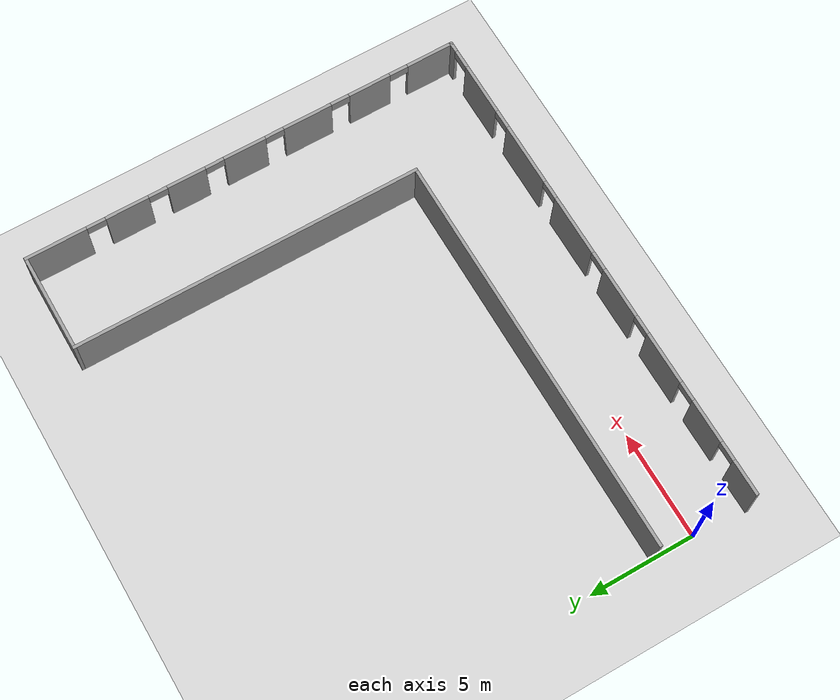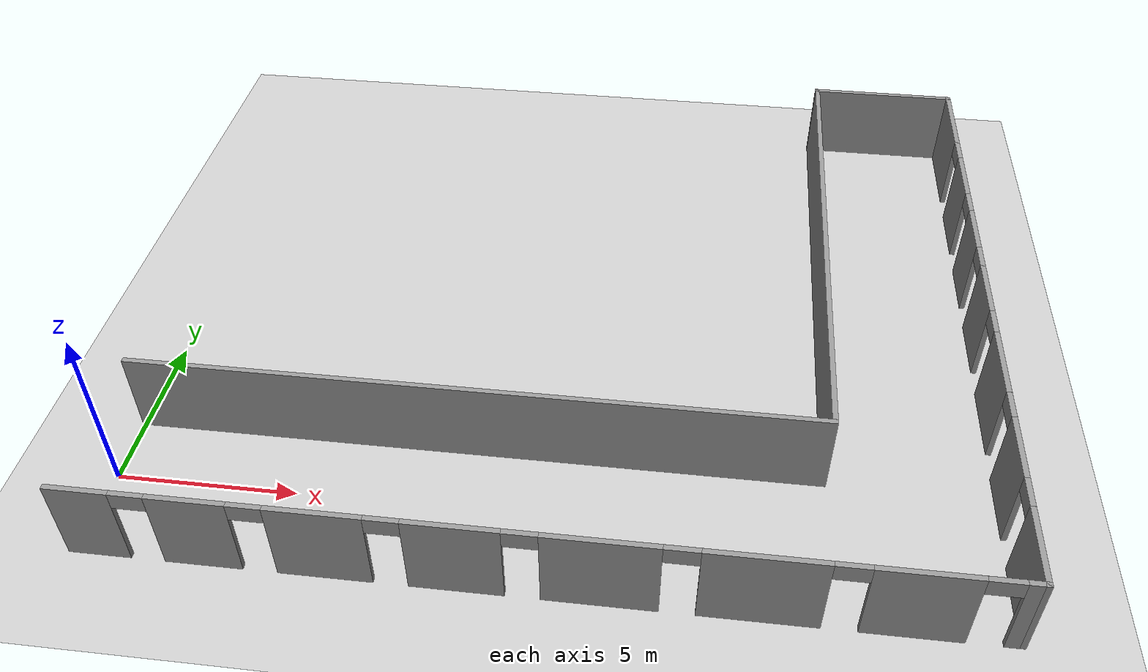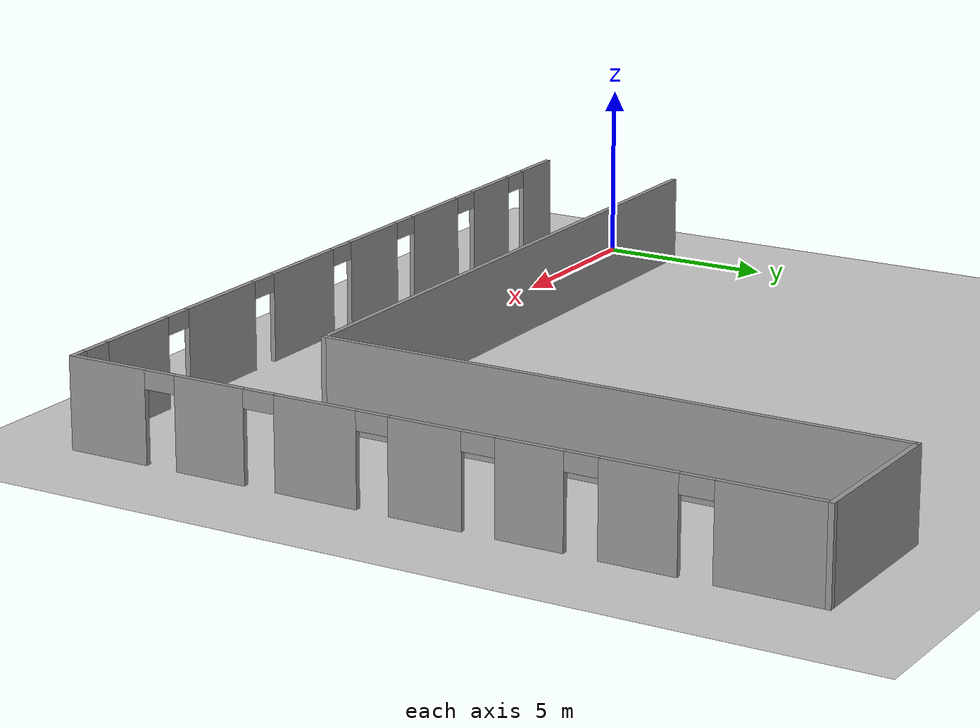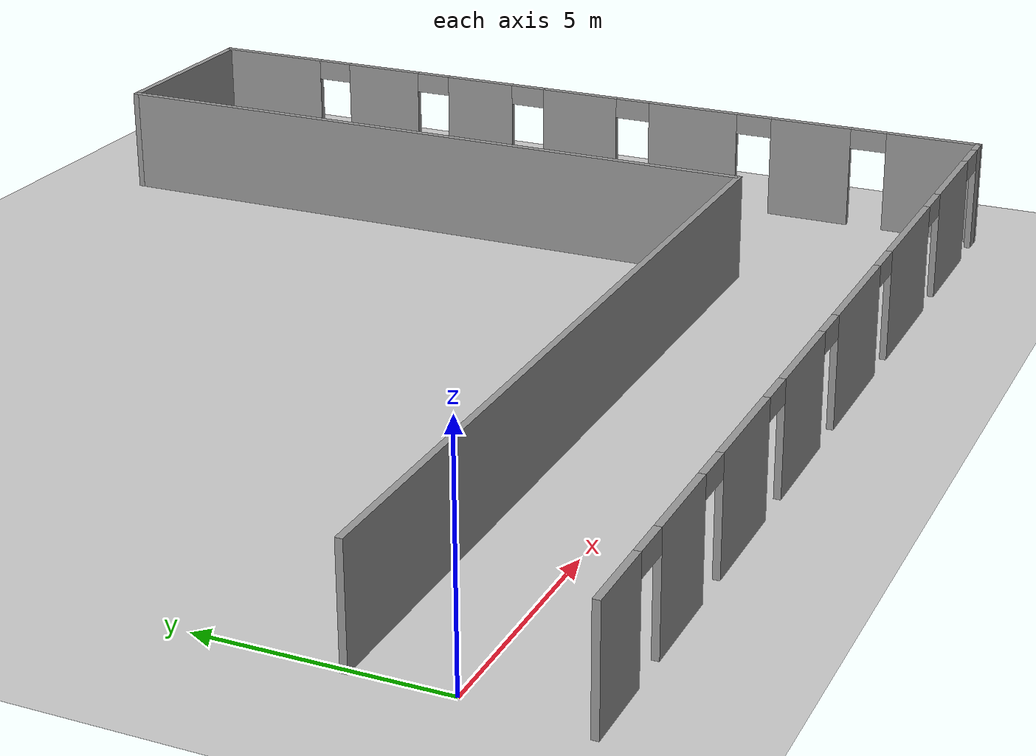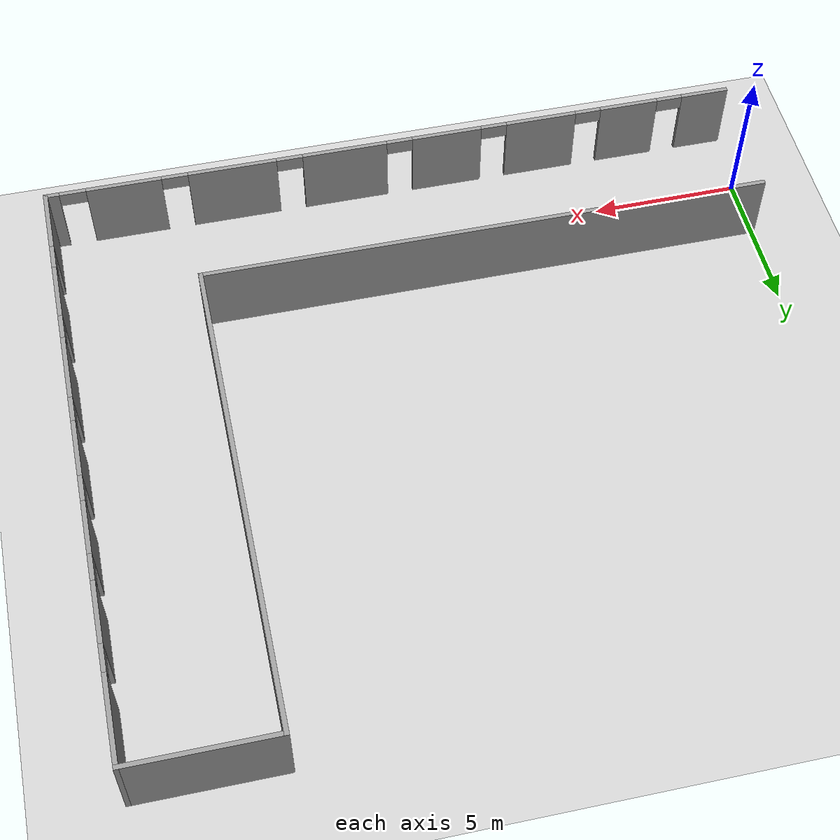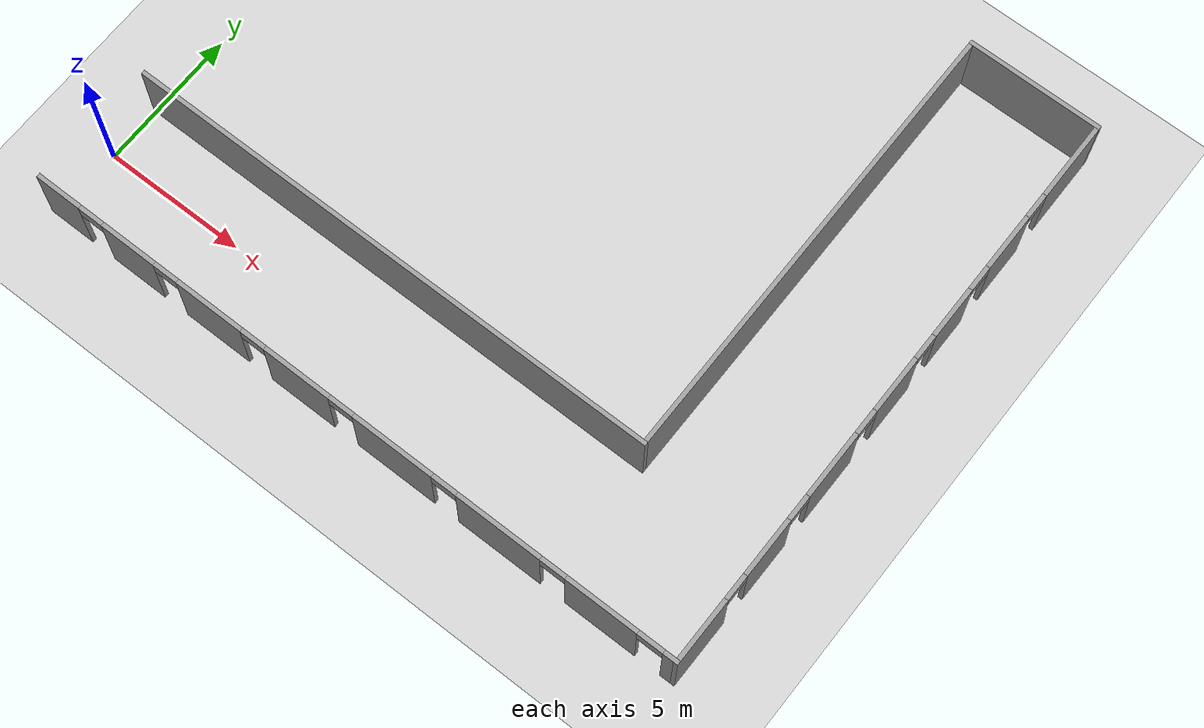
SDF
<sdf version="1.7">
 <world name="default">
  <light name="sun" type="directional">
   <pose>0 0 10 0 -0 0</pose>
   <diffuse>0.8 0.8 0.8 1</diffuse>
   <specular>0.2 0.2 0.2 1</specular>
   <attenuation>
    <range>1000</range>
    <constant>0.9</constant>
    <linear>0.01</linear>
    <quadratic>0.001</quadratic>
   </attenuation>
   <direction>-0.5 0.1 -0.9</direction>
   <spot><inner_angle>0</inner_angle><outer_angle>0</outer_angle><falloff>0</falloff></spot>
  </light>
  <model name="ground_plane">
   <static>1</static>
   <link name="link">
    <collision name="collision">
     <geometry><plane><normal>0 0 1</normal><size>100 100</size></plane></geometry>
     <surface><friction><ode><mu>100</mu><mu2>50</mu2></ode></friction></surface>
    </collision>
    <visual name="visual">
     <cast_shadows>0</cast_shadows>
     <geometry><plane><normal>0 0 1</normal><size>100 100</size></plane></geometry>
     <material>
      <script><uri>file://media/materials/scripts/gazebo.material</uri><name>Gazebo/Grey</name></script>
     </material>
    </visual>
   </link>
  </model>
  <gravity>0 0 -9.8</gravity>
  <magnetic_field>6e-06 2.3e-05 -4.2e-05</magnetic_field>
  <atmosphere type="adiabatic"/>
  <physics type="ode">
   <max_step_size>0.001</max_step_size>
   <real_time_factor>1</real_time_factor>
   <real_time_update_rate>1000</real_time_update_rate>
  </physics>
  <scene><ambient>0.4 0.4 0.4 1</ambient><background>0.7 0.7 0.7 1</background><shadows>1</shadows></scene>
  <spherical_coordinates>
   <surface_model>EARTH_WGS84</surface_model>
   <latitude_deg>0</latitude_deg>
   <longitude_deg>0</longitude_deg>
   <elevation>0</elevation>
   <heading_deg>0</heading_deg>
  </spherical_coordinates>
  <model name="test_map_02">
   <pose>11.7455 7.94751 0 0 -0 0</pose>
   <link name="Wall_0">
    <pose>-1e-06 -10.425 0 0 -0 0</pose>
    <visual name="Wall_0_Visual_0">
     <pose>-11.1612 0 1.25 0 -0 0</pose>
     <geometry><box><size>1.6777 0.15 2.5</size></box></geometry>
     <material>
      <script><uri>file://media/materials/scripts/gazebo.material</uri><name>Gazebo/Grey</name></script>
      <ambient>1 1 1 1</ambient>
     </material>
     <meta><layer>0</layer></meta>
    </visual>
    <collision name="Wall_0_Collision_0">
     <geometry><box><size>1.6777 0.15 2.5</size></box></geometry>
     <pose>-11.1612 0 1.25 0 -0 0</pose>
    </collision>
    <visual name="Wall_0_Visual_1">
     <pose>-8.39479 0 1.25 0 -0 0</pose>
     <geometry><box><size>2.05502 0.15 2.5</size></box></geometry>
     <material>
      <script><uri>file://media/materials/scripts/gazebo.material</uri><name>Gazebo/Grey</name></script>
      <ambient>1 1 1 1</ambient>
     </material>
     <meta><layer>0</layer></meta>
    </visual>
    <collision name="Wall_0_Collision_1">
     <geometry><box><size>2.05502 0.15 2.5</size></box></geometry>
     <pose>-8.39479 0 1.25 0 -0 0</pose>
    </collision>
    <visual name="Wall_0_Visual_2">
     <pose>-5.22871 0 1.25 0 -0 0</pose>
     <geometry><box><size>2.47716 0.15 2.5</size></box></geometry>
     <material>
      <script><uri>file://media/materials/scripts/gazebo.material</uri><name>Gazebo/Grey</name></script>
      <ambient>1 1 1 1</ambient>
     </material>
     <meta><layer>0</layer></meta>
    </visual>
    <collision name="Wall_0_Collision_2">
     <geometry><box><size>2.47716 0.15 2.5</size></box></geometry>
     <pose>-5.22871 0 1.25 0 -0 0</pose>
    </collision>
    <visual name="Wall_0_Visual_3">
     <pose>-1.86913 0 1.25 0 -0 0</pose>
     <geometry><box><size>2.44198 0.15 2.5</size></box></geometry>
     <material>
      <script><uri>file://media/materials/scripts/gazebo.material</uri><name>Gazebo/Grey</name></script>
      <ambient>1 1 1 1</ambient>
     </material>
     <meta><layer>0</layer></meta>
    </visual>
    <collision name="Wall_0_Collision_3">
     <geometry><box><size>2.44198 0.15 2.5</size></box></geometry>
     <pose>-1.86913 0 1.25 0 -0 0</pose>
    </collision>
    <visual name="Wall_0_Visual_4">
     <pose>1.7191 0 1.25 0 -0 0</pose>
     <geometry><box><size>2.93449 0.15 2.5</size></box></geometry>
     <material>
      <script><uri>file://media/materials/scripts/gazebo.material</uri><name>Gazebo/Grey</name></script>
      <ambient>1 1 1 1</ambient>
     </material>
     <meta><layer>0</layer></meta>
    </visual>
    <collision name="Wall_0_Collision_4">
     <geometry><box><size>2.93449 0.15 2.5</size></box></geometry>
     <pose>1.7191 0 1.25 0 -0 0</pose>
    </collision>
    <visual name="Wall_0_Visual_5">
     <pose>5.60635 0 1.25 0 -0 0</pose>
     <geometry><box><size>3.04002 0.15 2.5</size></box></geometry>
     <material>
      <script><uri>file://media/materials/scripts/gazebo.material</uri><name>Gazebo/Grey</name></script>
      <ambient>1 1 1 1</ambient>
     </material>
     <meta><layer>0</layer></meta>
    </visual>
    <collision name="Wall_0_Collision_5">
     <geometry><box><size>3.04002 0.15 2.5</size></box></geometry>
     <pose>5.60635 0 1.25 0 -0 0</pose>
    </collision>
    <visual name="Wall_0_Visual_6">
     <pose>9.30012 0 1.25 0 -0 0</pose>
     <geometry><box><size>2.54752 0.15 2.5</size></box></geometry>
     <material>
      <script><uri>file://media/materials/scripts/gazebo.material</uri><name>Gazebo/Grey</name></script>
      <ambient>1 1 1 1</ambient>
     </material>
     <meta><layer>0</layer></meta>
    </visual>
    <collision name="Wall_0_Collision_6">
     <geometry><box><size>2.54752 0.15 2.5</size></box></geometry>
     <pose>9.30012 0 1.25 0 -0 0</pose>
    </collision>
    <visual name="Wall_0_Visual_7">
     <pose>11.7369 0 1.25 0 -0 0</pose>
     <geometry><box><size>0.526118 0.15 2.5</size></box></geometry>
     <material>
      <script><uri>file://media/materials/scripts/gazebo.material</uri><name>Gazebo/Grey</name></script>
      <ambient>1 1 1 1</ambient>
     </material>
     <meta><layer>0</layer></meta>
    </visual>
    <collision name="Wall_0_Collision_7">
     <geometry><box><size>0.526118 0.15 2.5</size></box></geometry>
     <pose>11.7369 0 1.25 0 -0 0</pose>
    </collision>
    <visual name="Wall_0_Visual_8">
     <pose>-9.8723 0 2.25 0 -0 0</pose>
     <geometry><box><size>0.9 0.15 0.5</size></box></geometry>
     <material>
      <script><uri>file://media/materials/scripts/gazebo.material</uri><name>Gazebo/Grey</name></script>
      <ambient>1 1 1 1</ambient>
     </material>
     <meta><layer>0</layer></meta>
    </visual>
    <collision name="Wall_0_Collision_8">
     <geometry><box><size>0.9 0.15 0.5</size></box></geometry>
     <pose>-9.8723 0 2.25 0 -0 0</pose>
    </collision>
    <visual name="Wall_0_Visual_9">
     <pose>-6.91729 0 2.25 0 -0 0</pose>
     <geometry><box><size>0.9 0.15 0.5</size></box></geometry>
     <material>
      <script><uri>file://media/materials/scripts/gazebo.material</uri><name>Gazebo/Grey</name></script>
      <ambient>1 1 1 1</ambient>
     </material>
     <meta><layer>0</layer></meta>
    </visual>
    <collision name="Wall_0_Collision_9">
     <geometry><box><size>0.9 0.15 0.5</size></box></geometry>
     <pose>-6.91729 0 2.25 0 -0 0</pose>
    </collision>
    <visual name="Wall_0_Visual_10">
     <pose>-3.54013 0 2.25 0 -0 0</pose>
     <geometry><box><size>0.9 0.15 0.5</size></box></geometry>
     <material>
      <script><uri>file://media/materials/scripts/gazebo.material</uri><name>Gazebo/Grey</name></script>
      <ambient>1 1 1 1</ambient>
     </material>
     <meta><layer>0</layer></meta>
    </visual>
    <collision name="Wall_0_Collision_10">
     <geometry><box><size>0.9 0.15 0.5</size></box></geometry>
     <pose>-3.54013 0 2.25 0 -0 0</pose>
    </collision>
    <visual name="Wall_0_Visual_11">
     <pose>-0.198143 0 2.25 0 -0 0</pose>
     <geometry><box><size>0.9 0.15 0.5</size></box></geometry>
     <material>
      <script><uri>file://media/materials/scripts/gazebo.material</uri><name>Gazebo/Grey</name></script>
      <ambient>1 1 1 1</ambient>
     </material>
     <meta><layer>0</layer></meta>
    </visual>
    <collision name="Wall_0_Collision_11">
     <geometry><box><size>0.9 0.15 0.5</size></box></geometry>
     <pose>-0.198143 0 2.25 0 -0 0</pose>
    </collision>
    <visual name="Wall_0_Visual_12">
     <pose>3.63634 0 2.25 0 -0 0</pose>
     <geometry><box><size>0.9 0.15 0.5</size></box></geometry>
     <material>
      <script><uri>file://media/materials/scripts/gazebo.material</uri><name>Gazebo/Grey</name></script>
      <ambient>1 1 1 1</ambient>
     </material>
     <meta><layer>0</layer></meta>
    </visual>
    <collision name="Wall_0_Collision_12">
     <geometry><box><size>0.9 0.15 0.5</size></box></geometry>
     <pose>3.63634 0 2.25 0 -0 0</pose>
    </collision>
    <visual name="Wall_0_Visual_13">
     <pose>7.57637 0 2.25 0 -0 0</pose>
     <geometry><box><size>0.9 0.15 0.5</size></box></geometry>
     <material>
      <script><uri>file://media/materials/scripts/gazebo.material</uri><name>Gazebo/Grey</name></script>
      <ambient>1 1 1 1</ambient>
     </material>
     <meta><layer>0</layer></meta>
    </visual>
    <collision name="Wall_0_Collision_13">
     <geometry><box><size>0.9 0.15 0.5</size></box></geometry>
     <pose>7.57637 0 2.25 0 -0 0</pose>
    </collision>
    <visual name="Wall_0_Visual_14">
     <pose>11.0239 0 2.25 0 -0 0</pose>
     <geometry><box><size>0.9 0.15 0.5</size></box></geometry>
     <material>
      <script><uri>file://media/materials/scripts/gazebo.material</uri><name>Gazebo/Grey</name></script>
      <ambient>1 1 1 1</ambient>
     </material>
     <meta><layer>0</layer></meta>
    </visual>
    <collision name="Wall_0_Collision_14">
     <geometry><box><size>0.9 0.15 0.5</size></box></geometry>
     <pose>11.0239 0 2.25 0 -0 0</pose>
    </collision>
   </link>
   <link name="Wall_1">
    <pose>11.925 0 0 0 -0 1.5708</pose>
    <visual name="Wall_1_Visual_0">
     <pose>-9.33265 0 1.25 0 -0 0</pose>
     <geometry><box><size>2.33471 0.15 2.5</size></box></geometry>
     <material>
      <script><uri>file://media/materials/scripts/gazebo.material</uri><name>Gazebo/Grey</name></script>
      <ambient>1 1 1 1</ambient>
     </material>
     <meta><layer>0</layer></meta>
    </visual>
    <collision name="Wall_1_Collision_0">
     <geometry><box><size>2.33471 0.15 2.5</size></box></geometry>
     <pose>-9.33265 0 1.25 0 -0 0</pose>
    </collision>
    <visual name="Wall_1_Visual_1">
     <pose>-6.23778 0 1.25 0 -0 0</pose>
     <geometry><box><size>2.05502 0.15 2.5</size></box></geometry>
     <material>
      <script><uri>file://media/materials/scripts/gazebo.material</uri><name>Gazebo/Grey</name></script>
      <ambient>1 1 1 1</ambient>
     </material>
     <meta><layer>0</layer></meta>
    </visual>
    <collision name="Wall_1_Collision_1">
     <geometry><box><size>2.05502 0.15 2.5</size></box></geometry>
     <pose>-6.23778 0 1.25 0 -0 0</pose>
    </collision>
    <visual name="Wall_1_Visual_2">
     <pose>-3.12943 0 1.25 0 -0 0</pose>
     <geometry><box><size>2.36169 0.15 2.5</size></box></geometry>
     <material>
      <script><uri>file://media/materials/scripts/gazebo.material</uri><name>Gazebo/Grey</name></script>
      <ambient>1 1 1 1</ambient>
     </material>
     <meta><layer>0</layer></meta>
    </visual>
    <collision name="Wall_1_Collision_2">
     <geometry><box><size>2.36169 0.15 2.5</size></box></geometry>
     <pose>-3.12943 0 1.25 0 -0 0</pose>
    </collision>
    <visual name="Wall_1_Visual_3">
     <pose>-0.033088 0 1.25 0 -0 0</pose>
     <geometry><box><size>2.03101 0.15 2.5</size></box></geometry>
     <material>
      <script><uri>file://media/materials/scripts/gazebo.material</uri><name>Gazebo/Grey</name></script>
      <ambient>1 1 1 1</ambient>
     </material>
     <meta><layer>0</layer></meta>
    </visual>
    <collision name="Wall_1_Collision_3">
     <geometry><box><size>2.03101 0.15 2.5</size></box></geometry>
     <pose>-0.033088 0 1.25 0 -0 0</pose>
    </collision>
    <visual name="Wall_1_Visual_4">
     <pose>2.80487 0 1.25 0 -0 0</pose>
     <geometry><box><size>1.84491 0.15 2.5</size></box></geometry>
     <material>
      <script><uri>file://media/materials/scripts/gazebo.material</uri><name>Gazebo/Grey</name></script>
      <ambient>1 1 1 1</ambient>
     </material>
     <meta><layer>0</layer></meta>
    </visual>
    <collision name="Wall_1_Collision_4">
     <geometry><box><size>1.84491 0.15 2.5</size></box></geometry>
     <pose>2.80487 0 1.25 0 -0 0</pose>
    </collision>
    <visual name="Wall_1_Visual_5">
     <pose>5.65345 0 1.25 0 -0 0</pose>
     <geometry><box><size>2.05226 0.15 2.5</size></box></geometry>
     <material>
      <script><uri>file://media/materials/scripts/gazebo.material</uri><name>Gazebo/Grey</name></script>
      <ambient>1 1 1 1</ambient>
     </material>
     <meta><layer>0</layer></meta>
    </visual>
    <collision name="Wall_1_Collision_5">
     <geometry><box><size>2.05226 0.15 2.5</size></box></geometry>
     <pose>5.65345 0 1.25 0 -0 0</pose>
    </collision>
    <visual name="Wall_1_Visual_6">
     <pose>9.03979 0 1.25 0 -0 0</pose>
     <geometry><box><size>2.92042 0.15 2.5</size></box></geometry>
     <material>
      <script><uri>file://media/materials/scripts/gazebo.material</uri><name>Gazebo/Grey</name></script>
      <ambient>1 1 1 1</ambient>
     </material>
     <meta><layer>0</layer></meta>
    </visual>
    <collision name="Wall_1_Collision_6">
     <geometry><box><size>2.92042 0.15 2.5</size></box></geometry>
     <pose>9.03979 0 1.25 0 -0 0</pose>
    </collision>
    <visual name="Wall_1_Visual_7">
     <pose>-7.71529 0 2.25 0 -0 0</pose>
     <geometry><box><size>0.9 0.15 0.5</size></box></geometry>
     <material>
      <script><uri>file://media/materials/scripts/gazebo.material</uri><name>Gazebo/Grey</name></script>
      <ambient>1 1 1 1</ambient>
     </material>
     <meta><layer>0</layer></meta>
    </visual>
    <collision name="Wall_1_Collision_7">
     <geometry><box><size>0.9 0.15 0.5</size></box></geometry>
     <pose>-7.71529 0 2.25 0 -0 0</pose>
    </collision>
    <visual name="Wall_1_Visual_8">
     <pose>-4.76028 0 2.25 0 -0 0</pose>
     <geometry><box><size>0.9 0.15 0.5</size></box></geometry>
     <material>
      <script><uri>file://media/materials/scripts/gazebo.material</uri><name>Gazebo/Grey</name></script>
      <ambient>1 1 1 1</ambient>
     </material>
     <meta><layer>0</layer></meta>
    </visual>
    <collision name="Wall_1_Collision_8">
     <geometry><box><size>0.9 0.15 0.5</size></box></geometry>
     <pose>-4.76028 0 2.25 0 -0 0</pose>
    </collision>
    <visual name="Wall_1_Visual_9">
     <pose>-1.49859 0 2.25 0 -0 0</pose>
     <geometry><box><size>0.9 0.15 0.5</size></box></geometry>
     <material>
      <script><uri>file://media/materials/scripts/gazebo.material</uri><name>Gazebo/Grey</name></script>
      <ambient>1 1 1 1</ambient>
     </material>
     <meta><layer>0</layer></meta>
    </visual>
    <collision name="Wall_1_Collision_9">
     <geometry><box><size>0.9 0.15 0.5</size></box></geometry>
     <pose>-1.49859 0 2.25 0 -0 0</pose>
    </collision>
    <visual name="Wall_1_Visual_10">
     <pose>1.43241 0 2.25 0 -0 0</pose>
     <geometry><box><size>0.9 0.15 0.5</size></box></geometry>
     <material>
      <script><uri>file://media/materials/scripts/gazebo.material</uri><name>Gazebo/Grey</name></script>
      <ambient>1 1 1 1</ambient>
     </material>
     <meta><layer>0</layer></meta>
    </visual>
    <collision name="Wall_1_Collision_10">
     <geometry><box><size>0.9 0.15 0.5</size></box></geometry>
     <pose>1.43241 0 2.25 0 -0 0</pose>
    </collision>
    <visual name="Wall_1_Visual_11">
     <pose>4.17733 0 2.25 0 -0 0</pose>
     <geometry><box><size>0.9 0.15 0.5</size></box></geometry>
     <material>
      <script><uri>file://media/materials/scripts/gazebo.material</uri><name>Gazebo/Grey</name></script>
      <ambient>1 1 1 1</ambient>
     </material>
     <meta><layer>0</layer></meta>
    </visual>
    <collision name="Wall_1_Collision_11">
     <geometry><box><size>0.9 0.15 0.5</size></box></geometry>
     <pose>4.17733 0 2.25 0 -0 0</pose>
    </collision>
    <visual name="Wall_1_Visual_12">
     <pose>7.12958 0 2.25 0 -0 0</pose>
     <geometry><box><size>0.9 0.15 0.5</size></box></geometry>
     <material>
      <script><uri>file://media/materials/scripts/gazebo.material</uri><name>Gazebo/Grey</name></script>
      <ambient>1 1 1 1</ambient>
     </material>
     <meta><layer>0</layer></meta>
    </visual>
    <collision name="Wall_1_Collision_12">
     <geometry><box><size>0.9 0.15 0.5</size></box></geometry>
     <pose>7.12958 0 2.25 0 -0 0</pose>
    </collision>
   </link>
   <link name="Wall_2">
    <collision name="Wall_2_Collision">
     <geometry><box><size>4.75 0.15 2.5</size></box></geometry>
     <pose>0 0 1.25 0 -0 0</pose>
    </collision>
    <visual name="Wall_2_Visual">
     <pose>0 0 1.25 0 -0 0</pose>
     <geometry><box><size>4.75 0.15 2.5</size></box></geometry>
     <material>
      <script><uri>file://media/materials/scripts/gazebo.material</uri><name>Gazebo/Grey</name></script>
      <ambient>1 1 1 1</ambient>
     </material>
     <meta><layer>0</layer></meta>
    </visual>
    <pose>9.625 10.425 0 0 -0 3.14159</pose>
   </link>
   <link name="Wall_3">
    <collision name="Wall_3_Collision">
     <geometry><box><size>16.5 0.15 2.5</size></box></geometry>
     <pose>0 0 1.25 0 -0 0</pose>
    </collision>
    <visual name="Wall_3_Visual">
     <pose>0 0 1.25 0 -0 0</pose>
     <geometry><box><size>16.5 0.15 2.5</size></box></geometry>
     <material>
      <script><uri>file://media/materials/scripts/gazebo.material</uri><name>Gazebo/Grey</name></script>
      <ambient>1 1 1 1</ambient>
     </material>
     <meta><layer>0</layer></meta>
    </visual>
    <pose>7.325 2.25 0 0 -0 -1.5708</pose>
   </link>
   <link name="Wall_4">
    <collision name="Wall_4_Collision">
     <geometry><box><size>19.25 0.15 2.5</size></box></geometry>
     <pose>0 0 1.25 0 -0 0</pose>
    </collision>
    <visual name="Wall_4_Visual">
     <pose>0 0 1.25 0 -0 0</pose>
     <geometry><box><size>19.25 0.15 2.5</size></box></geometry>
     <material>
      <script><uri>file://media/materials/scripts/gazebo.material</uri><name>Gazebo/Grey</name></script>
      <ambient>1 1 1 1</ambient>
     </material>
     <meta><layer>0</layer></meta>
    </visual>
    <pose>-2.225 -5.925 0 0 -0 3.14159</pose>
   </link>
   <static>1</static>
  </model>
 </world>
</sdf>
